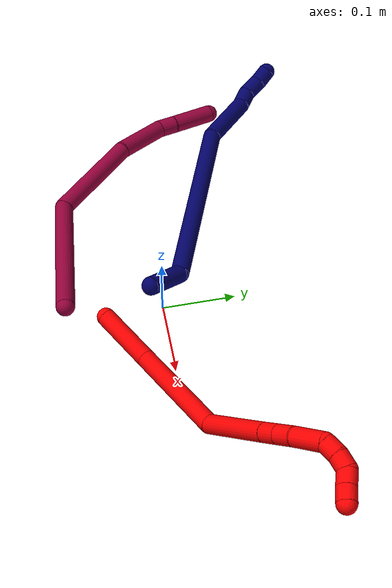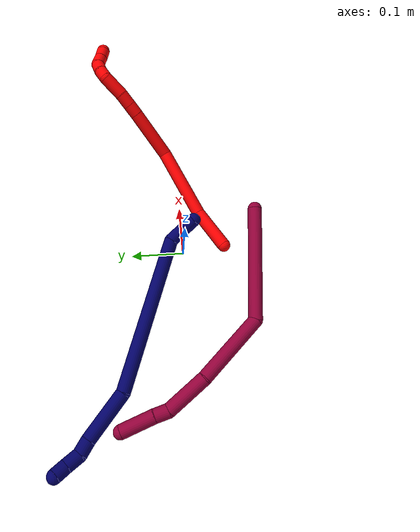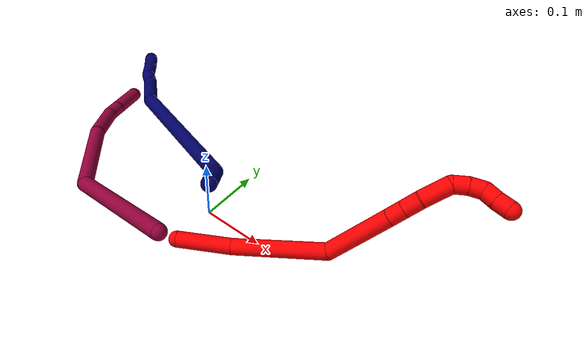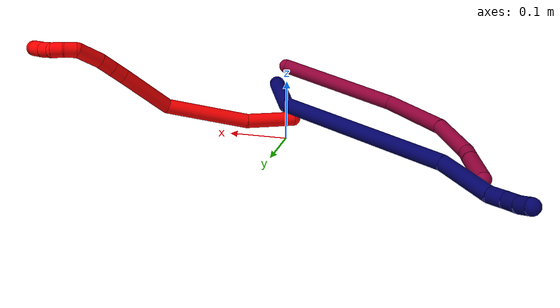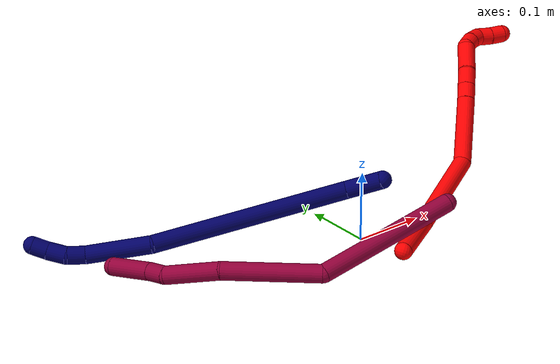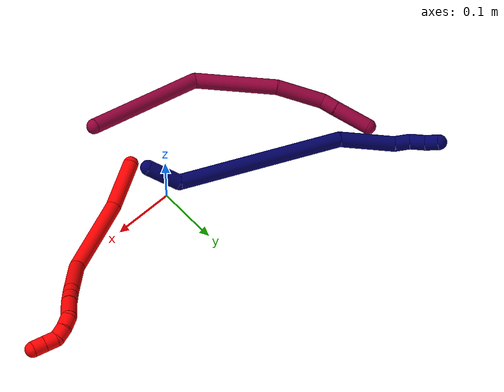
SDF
<sdf version="1.7">
 <world name="default">
  <model name="2">
   <static>0</static>
   <link name="2">
    <collision name="collision-cylinder-e_1_1_4">
     <pose>0.025647 0.022432 0.025403 -0.723371 0.647817 -0.252682</pose>
     <geometry><cylinder><radius>0.0125</radius><length>0.085001</length></cylinder></geometry>
     <surface>
      <friction><ode><mu>1.16</mu><mu2>1.16</mu2><slip1>0</slip1><slip2>0</slip2></ode></friction>
      <contact><ode><kp>1e+06</kp><kd>1</kd><max_vel>0</max_vel><min_depth>0.001</min_depth></ode></contact>
     </surface>
    </collision>
    <visual name="visual-cylinder-e_1_1_4">
     <pose>0.025647 0.022432 0.025403 -0.723371 0.647817 -0.252682</pose>
     <geometry><cylinder><radius>0.0125</radius><length>0.085001</length></cylinder></geometry>
     <material><ambient>1 0 0 1</ambient></material>
    </visual>
    <collision name="collision-cylinder-e_2_4_5">
     <pose>0.088349 0.072956 0.105535 -0.474216 0.542153 -0.134118</pose>
     <geometry><cylinder><radius>0.0125</radius><length>0.143631</length></cylinder></geometry>
     <surface>
      <friction><ode><mu>1.16</mu><mu2>1.16</mu2><slip1>0</slip1><slip2>0</slip2></ode></friction>
      <contact><ode><kp>1e+06</kp><kd>1</kd><max_vel>0</max_vel><min_depth>0.001</min_depth></ode></contact>
     </surface>
    </collision>
    <visual name="visual-cylinder-e_2_4_5">
     <pose>0.088349 0.072956 0.105535 -0.474216 0.542153 -0.134118</pose>
     <geometry><cylinder><radius>0.0125</radius><length>0.143631</length></cylinder></geometry>
     <material><ambient>1 0 0 1</ambient></material>
    </visual>
    <collision name="collision-cylinder-e_3_5_6">
     <pose>0.125526 0.119895 0.206271 -0.388817 0.002455 -0.000483</pose>
     <geometry><cylinder><radius>0.0125</radius><length>0.099436</length></cylinder></geometry>
     <surface>
      <friction><ode><mu>1.16</mu><mu2>1.16</mu2><slip1>0</slip1><slip2>0</slip2></ode></friction>
      <contact><ode><kp>1e+06</kp><kd>1</kd><max_vel>0</max_vel><min_depth>0.001</min_depth></ode></contact>
     </surface>
    </collision>
    <visual name="visual-cylinder-e_3_5_6">
     <pose>0.125526 0.119895 0.206271 -0.388817 0.002455 -0.000483</pose>
     <geometry><cylinder><radius>0.0125</radius><length>0.099436</length></cylinder></geometry>
     <material><ambient>1 0 0 1</ambient></material>
    </visual>
    <collision name="collision-cylinder-e_4_6_7">
     <pose>0.125604 0.143378 0.262735 -0.41728 -0.003862 0.000818</pose>
     <geometry><cylinder><radius>0.0125</radius><length>0.022878</length></cylinder></geometry>
     <surface>
      <friction><ode><mu>1.16</mu><mu2>1.16</mu2><slip1>0</slip1><slip2>0</slip2></ode></friction>
      <contact><ode><kp>1e+06</kp><kd>1</kd><max_vel>0</max_vel><min_depth>0.001</min_depth></ode></contact>
     </surface>
    </collision>
    <visual name="visual-cylinder-e_4_6_7">
     <pose>0.125604 0.143378 0.262735 -0.41728 -0.003862 0.000818</pose>
     <geometry><cylinder><radius>0.0125</radius><length>0.022878</length></cylinder></geometry>
     <material><ambient>1 0 0 1</ambient></material>
    </visual>
    <collision name="collision-cylinder-e_5_7_8">
     <pose>0.125503 0.153123 0.284691 -0.418093 -0.004511 0.000957</pose>
     <geometry><cylinder><radius>0.0125</radius><length>0.025166</length></cylinder></geometry>
     <surface>
      <friction><ode><mu>1.16</mu><mu2>1.16</mu2><slip1>0</slip1><slip2>0</slip2></ode></friction>
      <contact><ode><kp>1e+06</kp><kd>1</kd><max_vel>0</max_vel><min_depth>0.001</min_depth></ode></contact>
     </surface>
    </collision>
    <visual name="visual-cylinder-e_5_7_8">
     <pose>0.125503 0.153123 0.284691 -0.418093 -0.004511 0.000957</pose>
     <geometry><cylinder><radius>0.0125</radius><length>0.025166</length></cylinder></geometry>
     <material><ambient>1 0 0 1</ambient></material>
    </visual>
    <collision name="collision-cylinder-e_6_8_9">
     <pose>0.126559 0.169566 0.314464 -0.555161 0.051672 -0.014726</pose>
     <geometry><cylinder><radius>0.0125</radius><length>0.043066</length></cylinder></geometry>
     <surface>
      <friction><ode><mu>1.16</mu><mu2>1.16</mu2><slip1>0</slip1><slip2>0</slip2></ode></friction>
      <contact><ode><kp>1e+06</kp><kd>1</kd><max_vel>0</max_vel><min_depth>0.001</min_depth></ode></contact>
     </surface>
    </collision>
    <visual name="visual-cylinder-e_6_8_9">
     <pose>0.126559 0.169566 0.314464 -0.555161 0.051672 -0.014726</pose>
     <geometry><cylinder><radius>0.0125</radius><length>0.043066</length></cylinder></geometry>
     <material><ambient>1 0 0 1</ambient></material>
    </visual>
    <collision name="collision-cylinder-e_7_9_10">
     <pose>0.133729 0.186097 0.339348 -0.66632 0.624388 -0.222458</pose>
     <geometry><cylinder><radius>0.0125</radius><length>0.020726</length></cylinder></geometry>
     <surface>
      <friction><ode><mu>1.16</mu><mu2>1.16</mu2><slip1>0</slip1><slip2>0</slip2></ode></friction>
      <contact><ode><kp>1e+06</kp><kd>1</kd><max_vel>0</max_vel><min_depth>0.001</min_depth></ode></contact>
     </surface>
    </collision>
    <visual name="visual-cylinder-e_7_9_10">
     <pose>0.133729 0.186097 0.339348 -0.66632 0.624388 -0.222458</pose>
     <geometry><cylinder><radius>0.0125</radius><length>0.020726</length></cylinder></geometry>
     <material><ambient>1 0 0 1</ambient></material>
    </visual>
    <collision name="collision-cylinder-e_8_10_11">
     <pose>0.147235 0.194829 0.35163 -0.557338 0.839411 -0.253965</pose>
     <geometry><cylinder><radius>0.0125</radius><length>0.020014</length></cylinder></geometry>
     <surface>
      <friction><ode><mu>1.16</mu><mu2>1.16</mu2><slip1>0</slip1><slip2>0</slip2></ode></friction>
      <contact><ode><kp>1e+06</kp><kd>1</kd><max_vel>0</max_vel><min_depth>0.001</min_depth></ode></contact>
     </surface>
    </collision>
    <visual name="visual-cylinder-e_8_10_11">
     <pose>0.147235 0.194829 0.35163 -0.557338 0.839411 -0.253965</pose>
     <geometry><cylinder><radius>0.0125</radius><length>0.020014</length></cylinder></geometry>
     <material><ambient>1 0 0 1</ambient></material>
    </visual>
    <collision name="collision-cylinder-e_9_11_12">
     <pose>0.163576 0.196403 0.361477 0.439104 1.09231 0.269627</pose>
     <geometry><cylinder><radius>0.0125</radius><length>0.020038</length></cylinder></geometry>
     <surface>
      <friction><ode><mu>1.16</mu><mu2>1.16</mu2><slip1>0</slip1><slip2>0</slip2></ode></friction>
      <contact><ode><kp>1e+06</kp><kd>1</kd><max_vel>0</max_vel><min_depth>0.001</min_depth></ode></contact>
     </surface>
    </collision>
    <visual name="visual-cylinder-e_9_11_12">
     <pose>0.163576 0.196403 0.361477 0.439104 1.09231 0.269627</pose>
     <geometry><cylinder><radius>0.0125</radius><length>0.020038</length></cylinder></geometry>
     <material><ambient>1 0 0 1</ambient></material>
    </visual>
    <collision name="collision-cylinder-e_10_12_2">
     <pose>0.180929 0.192706 0.37074 0.328909 1.00475 0.181843</pose>
     <geometry><cylinder><radius>0.0125</radius><length>0.020046</length></cylinder></geometry>
     <surface>
      <friction><ode><mu>1.16</mu><mu2>1.16</mu2><slip1>0</slip1><slip2>0</slip2></ode></friction>
      <contact><ode><kp>1e+06</kp><kd>1</kd><max_vel>0</max_vel><min_depth>0.001</min_depth></ode></contact>
     </surface>
    </collision>
    <visual name="visual-cylinder-e_10_12_2">
     <pose>0.180929 0.192706 0.37074 0.328909 1.00475 0.181843</pose>
     <geometry><cylinder><radius>0.0125</radius><length>0.020046</length></cylinder></geometry>
     <material><ambient>1 0 0 1</ambient></material>
    </visual>
    <collision name="collision-sphere-2">
     <pose>0.189389 0.19097 0.375827 0 -0 0</pose>
     <geometry><sphere><radius>0.0125</radius></sphere></geometry>
     <surface>
      <friction><ode><mu>1.16</mu><mu2>1.16</mu2><slip1>0</slip1><slip2>0</slip2></ode></friction>
      <contact><ode><kp>1e+06</kp><kd>1</kd><max_vel>0</max_vel><min_depth>0.001</min_depth></ode></contact>
     </surface>
    </collision>
    <visual name="visual-sphere-2">
     <pose>0.189389 0.19097 0.375827 0 -0 0</pose>
     <geometry><sphere><radius>0.0125</radius></sphere></geometry>
     <material><ambient>1 0 0 1</ambient></material>
    </visual>
    <collision name="collision-sphere-12">
     <pose>0.17247 0.194442 0.365653 0 -0 0</pose>
     <geometry><sphere><radius>0.0125</radius></sphere></geometry>
     <surface>
      <friction><ode><mu>1.16</mu><mu2>1.16</mu2><slip1>0</slip1><slip2>0</slip2></ode></friction>
      <contact><ode><kp>1e+06</kp><kd>1</kd><max_vel>0</max_vel><min_depth>0.001</min_depth></ode></contact>
     </surface>
    </collision>
    <visual name="visual-sphere-12">
     <pose>0.17247 0.194442 0.365653 0 -0 0</pose>
     <geometry><sphere><radius>0.0125</radius></sphere></geometry>
     <material><ambient>1 0 0 1</ambient></material>
    </visual>
    <collision name="collision-sphere-11">
     <pose>0.154683 0.198365 0.357302 0 -0 0</pose>
     <geometry><sphere><radius>0.0125</radius></sphere></geometry>
     <surface>
      <friction><ode><mu>1.16</mu><mu2>1.16</mu2><slip1>0</slip1><slip2>0</slip2></ode></friction>
      <contact><ode><kp>1e+06</kp><kd>1</kd><max_vel>0</max_vel><min_depth>0.001</min_depth></ode></contact>
     </surface>
    </collision>
    <visual name="visual-sphere-11">
     <pose>0.154683 0.198365 0.357302 0 -0 0</pose>
     <geometry><sphere><radius>0.0125</radius></sphere></geometry>
     <material><ambient>1 0 0 1</ambient></material>
    </visual>
    <collision name="collision-sphere-10">
     <pose>0.139787 0.191294 0.345958 0 -0 0</pose>
     <geometry><sphere><radius>0.0125</radius></sphere></geometry>
     <surface>
      <friction><ode><mu>1.16</mu><mu2>1.16</mu2><slip1>0</slip1><slip2>0</slip2></ode></friction>
      <contact><ode><kp>1e+06</kp><kd>1</kd><max_vel>0</max_vel><min_depth>0.001</min_depth></ode></contact>
     </surface>
    </collision>
    <visual name="visual-sphere-10">
     <pose>0.139787 0.191294 0.345958 0 -0 0</pose>
     <geometry><sphere><radius>0.0125</radius></sphere></geometry>
     <material><ambient>1 0 0 1</ambient></material>
    </visual>
    <collision name="collision-sphere-9">
     <pose>0.127671 0.180901 0.332739 0 -0 0</pose>
     <geometry><sphere><radius>0.0125</radius></sphere></geometry>
     <surface>
      <friction><ode><mu>1.16</mu><mu2>1.16</mu2><slip1>0</slip1><slip2>0</slip2></ode></friction>
      <contact><ode><kp>1e+06</kp><kd>1</kd><max_vel>0</max_vel><min_depth>0.001</min_depth></ode></contact>
     </surface>
    </collision>
    <visual name="visual-sphere-9">
     <pose>0.127671 0.180901 0.332739 0 -0 0</pose>
     <geometry><sphere><radius>0.0125</radius></sphere></geometry>
     <material><ambient>1 0 0 1</ambient></material>
    </visual>
    <collision name="collision-sphere-4">
     <pose>0.051293 0.044865 0.050806 0 -0 0</pose>
     <geometry><sphere><radius>0.0125</radius></sphere></geometry>
     <surface>
      <friction><ode><mu>1.16</mu><mu2>1.16</mu2><slip1>0</slip1><slip2>0</slip2></ode></friction>
      <contact><ode><kp>1e+06</kp><kd>1</kd><max_vel>0</max_vel><min_depth>0.001</min_depth></ode></contact>
     </surface>
    </collision>
    <visual name="visual-sphere-4">
     <pose>0.051293 0.044865 0.050806 0 -0 0</pose>
     <geometry><sphere><radius>0.0125</radius></sphere></geometry>
     <material><ambient>1 0 0 1</ambient></material>
    </visual>
    <collision name="collision-sphere-1">
     <geometry><sphere><radius>0.0125</radius></sphere></geometry>
     <surface>
      <friction><ode><mu>1.16</mu><mu2>1.16</mu2><slip1>0</slip1><slip2>0</slip2></ode></friction>
      <contact><ode><kp>1e+06</kp><kd>1</kd><max_vel>0</max_vel><min_depth>0.001</min_depth></ode></contact>
     </surface>
    </collision>
    <visual name="visual-sphere-1">
     <geometry><sphere><radius>0.0125</radius></sphere></geometry>
     <material><ambient>1 0 0 1</ambient></material>
    </visual>
    <collision name="collision-sphere-8">
     <pose>0.125447 0.158232 0.29619 0 -0 0</pose>
     <geometry><sphere><radius>0.0125</radius></sphere></geometry>
     <surface>
      <friction><ode><mu>1.16</mu><mu2>1.16</mu2><slip1>0</slip1><slip2>0</slip2></ode></friction>
      <contact><ode><kp>1e+06</kp><kd>1</kd><max_vel>0</max_vel><min_depth>0.001</min_depth></ode></contact>
     </surface>
    </collision>
    <visual name="visual-sphere-8">
     <pose>0.125447 0.158232 0.29619 0 -0 0</pose>
     <geometry><sphere><radius>0.0125</radius></sphere></geometry>
     <material><ambient>1 0 0 1</ambient></material>
    </visual>
    <collision name="collision-sphere-5">
     <pose>0.125404 0.101047 0.160264 0 -0 0</pose>
     <geometry><sphere><radius>0.0125</radius></sphere></geometry>
     <surface>
      <friction><ode><mu>1.16</mu><mu2>1.16</mu2><slip1>0</slip1><slip2>0</slip2></ode></friction>
      <contact><ode><kp>1e+06</kp><kd>1</kd><max_vel>0</max_vel><min_depth>0.001</min_depth></ode></contact>
     </surface>
    </collision>
    <visual name="visual-sphere-5">
     <pose>0.125404 0.101047 0.160264 0 -0 0</pose>
     <geometry><sphere><radius>0.0125</radius></sphere></geometry>
     <material><ambient>1 0 0 1</ambient></material>
    </visual>
    <collision name="collision-sphere-6">
     <pose>0.125648 0.138743 0.252278 0 -0 0</pose>
     <geometry><sphere><radius>0.0125</radius></sphere></geometry>
     <surface>
      <friction><ode><mu>1.16</mu><mu2>1.16</mu2><slip1>0</slip1><slip2>0</slip2></ode></friction>
      <contact><ode><kp>1e+06</kp><kd>1</kd><max_vel>0</max_vel><min_depth>0.001</min_depth></ode></contact>
     </surface>
    </collision>
    <visual name="visual-sphere-6">
     <pose>0.125648 0.138743 0.252278 0 -0 0</pose>
     <geometry><sphere><radius>0.0125</radius></sphere></geometry>
     <material><ambient>1 0 0 1</ambient></material>
    </visual>
    <collision name="collision-sphere-7">
     <pose>0.12556 0.148014 0.273192 0 -0 0</pose>
     <geometry><sphere><radius>0.0125</radius></sphere></geometry>
     <surface>
      <friction><ode><mu>1.16</mu><mu2>1.16</mu2><slip1>0</slip1><slip2>0</slip2></ode></friction>
      <contact><ode><kp>1e+06</kp><kd>1</kd><max_vel>0</max_vel><min_depth>0.001</min_depth></ode></contact>
     </surface>
    </collision>
    <visual name="visual-sphere-7">
     <pose>0.12556 0.148014 0.273192 0 -0 0</pose>
     <geometry><sphere><radius>0.0125</radius></sphere></geometry>
     <material><ambient>1 0 0 1</ambient></material>
    </visual>
    <inertial>
     <pose>0.102913 0.108596 0.186583 0 -0 0</pose>
     <mass>0.5</mass>
     <inertia>
      <ixx>0.000333</ixx>
      <ixy>0</ixy>
      <ixz>0</ixz>
      <iyy>0.000346</iyy>
      <iyz>0</iyz>
      <izz>-0.000306</izz>
     </inertia>
    </inertial>
   </link>
   <pose>0.007417 -0.078514 0.011493 -0.335859 0.552665 -0.255516</pose>
  </model>
  <model name="7">
   <static>0</static>
   <link name="7">
    <collision name="collision-cylinder-e_1_1_4">
     <pose>-0.013973 0.020198 0.01328 -0.98918 -0.524116 0.287315</pose>
     <geometry><cylinder><radius>0.0125</radius><length>0.05584</length></cylinder></geometry>
     <surface>
      <friction><ode><mu>1.16</mu><mu2>1.16</mu2><slip1>0</slip1><slip2>0</slip2></ode></friction>
      <contact><ode><kp>1e+06</kp><kd>1</kd><max_vel>0</max_vel><min_depth>0.001</min_depth></ode></contact>
     </surface>
    </collision>
    <visual name="visual-cylinder-e_1_1_4">
     <pose>-0.013973 0.020198 0.01328 -0.98918 -0.524116 0.287315</pose>
     <geometry><cylinder><radius>0.0125</radius><length>0.05584</length></cylinder></geometry>
     <material><ambient>0.003922 0 0.403922 1</ambient></material>
    </visual>
    <collision name="collision-cylinder-e_2_4_5">
     <pose>-0.145519 0.061955 0.098446 -0.291374 -1.00268 0.160479</pose>
     <geometry><cylinder><radius>0.0125</radius><length>0.278971</length></cylinder></geometry>
     <surface>
      <friction><ode><mu>1.16</mu><mu2>1.16</mu2><slip1>0</slip1><slip2>0</slip2></ode></friction>
      <contact><ode><kp>1e+06</kp><kd>1</kd><max_vel>0</max_vel><min_depth>0.001</min_depth></ode></contact>
     </surface>
    </collision>
    <visual name="visual-cylinder-e_2_4_5">
     <pose>-0.145519 0.061955 0.098446 -0.291374 -1.00268 0.160479</pose>
     <geometry><cylinder><radius>0.0125</radius><length>0.278971</length></cylinder></geometry>
     <material><ambient>0.003922 0 0.403922 1</ambient></material>
    </visual>
    <collision name="collision-cylinder-e_3_5_6">
     <pose>-0.292606 0.103474 0.198457 -0.61719 -0.707823 0.234477</pose>
     <geometry><cylinder><radius>0.0125</radius><length>0.090783</length></cylinder></geometry>
     <surface>
      <friction><ode><mu>1.16</mu><mu2>1.16</mu2><slip1>0</slip1><slip2>0</slip2></ode></friction>
      <contact><ode><kp>1e+06</kp><kd>1</kd><max_vel>0</max_vel><min_depth>0.001</min_depth></ode></contact>
     </surface>
    </collision>
    <visual name="visual-cylinder-e_3_5_6">
     <pose>-0.292606 0.103474 0.198457 -0.61719 -0.707823 0.234477</pose>
     <geometry><cylinder><radius>0.0125</radius><length>0.090783</length></cylinder></geometry>
     <material><ambient>0.003922 0 0.403922 1</ambient></material>
    </visual>
    <collision name="collision-cylinder-e_4_6_7">
     <pose>-0.330733 0.126027 0.235649 -0.278631 -0.740177 0.108697</pose>
     <geometry><cylinder><radius>0.0125</radius><length>0.025545</length></cylinder></geometry>
     <surface>
      <friction><ode><mu>1.16</mu><mu2>1.16</mu2><slip1>0</slip1><slip2>0</slip2></ode></friction>
      <contact><ode><kp>1e+06</kp><kd>1</kd><max_vel>0</max_vel><min_depth>0.001</min_depth></ode></contact>
     </surface>
    </collision>
    <visual name="visual-cylinder-e_4_6_7">
     <pose>-0.330733 0.126027 0.235649 -0.278631 -0.740177 0.108697</pose>
     <geometry><cylinder><radius>0.0125</radius><length>0.025545</length></cylinder></geometry>
     <material><ambient>0.003922 0 0.403922 1</ambient></material>
    </visual>
    <collision name="collision-cylinder-e_5_7_8">
     <pose>-0.344202 0.133049 0.25627 -0.365944 -0.373847 0.069966</pose>
     <geometry><cylinder><radius>0.0125</radius><length>0.026585</length></cylinder></geometry>
     <surface>
      <friction><ode><mu>1.16</mu><mu2>1.16</mu2><slip1>0</slip1><slip2>0</slip2></ode></friction>
      <contact><ode><kp>1e+06</kp><kd>1</kd><max_vel>0</max_vel><min_depth>0.001</min_depth></ode></contact>
     </surface>
    </collision>
    <visual name="visual-cylinder-e_5_7_8">
     <pose>-0.344202 0.133049 0.25627 -0.365944 -0.373847 0.069966</pose>
     <geometry><cylinder><radius>0.0125</radius><length>0.026585</length></cylinder></geometry>
     <material><ambient>0.003922 0 0.403922 1</ambient></material>
    </visual>
    <collision name="collision-cylinder-e_6_8_2">
     <pose>-0.352908 0.139699 0.278037 -0.214302 -0.353188 0.038385</pose>
     <geometry><cylinder><radius>0.0125</radius><length>0.022276</length></cylinder></geometry>
     <surface>
      <friction><ode><mu>1.16</mu><mu2>1.16</mu2><slip1>0</slip1><slip2>0</slip2></ode></friction>
      <contact><ode><kp>1e+06</kp><kd>1</kd><max_vel>0</max_vel><min_depth>0.001</min_depth></ode></contact>
     </surface>
    </collision>
    <visual name="visual-cylinder-e_6_8_2">
     <pose>-0.352908 0.139699 0.278037 -0.214302 -0.353188 0.038385</pose>
     <geometry><cylinder><radius>0.0125</radius><length>0.022276</length></cylinder></geometry>
     <material><ambient>0.003922 0 0.403922 1</ambient></material>
    </visual>
    <collision name="collision-sphere-2">
     <pose>-0.356761 0.141922 0.288248 0 -0 0</pose>
     <geometry><sphere><radius>0.0125</radius></sphere></geometry>
     <surface>
      <friction><ode><mu>1.16</mu><mu2>1.16</mu2><slip1>0</slip1><slip2>0</slip2></ode></friction>
      <contact><ode><kp>1e+06</kp><kd>1</kd><max_vel>0</max_vel><min_depth>0.001</min_depth></ode></contact>
     </surface>
    </collision>
    <visual name="visual-sphere-2">
     <pose>-0.356761 0.141922 0.288248 0 -0 0</pose>
     <geometry><sphere><radius>0.0125</radius></sphere></geometry>
     <material><ambient>0.003922 0 0.403922 1</ambient></material>
    </visual>
    <collision name="collision-sphere-4">
     <pose>-0.027945 0.040395 0.026559 0 -0 0</pose>
     <geometry><sphere><radius>0.0125</radius></sphere></geometry>
     <surface>
      <friction><ode><mu>1.16</mu><mu2>1.16</mu2><slip1>0</slip1><slip2>0</slip2></ode></friction>
      <contact><ode><kp>1e+06</kp><kd>1</kd><max_vel>0</max_vel><min_depth>0.001</min_depth></ode></contact>
     </surface>
    </collision>
    <visual name="visual-sphere-4">
     <pose>-0.027945 0.040395 0.026559 0 -0 0</pose>
     <geometry><sphere><radius>0.0125</radius></sphere></geometry>
     <material><ambient>0.003922 0 0.403922 1</ambient></material>
    </visual>
    <collision name="collision-sphere-1">
     <geometry><sphere><radius>0.0125</radius></sphere></geometry>
     <surface>
      <friction><ode><mu>1.16</mu><mu2>1.16</mu2><slip1>0</slip1><slip2>0</slip2></ode></friction>
      <contact><ode><kp>1e+06</kp><kd>1</kd><max_vel>0</max_vel><min_depth>0.001</min_depth></ode></contact>
     </surface>
    </collision>
    <visual name="visual-sphere-1">
     <geometry><sphere><radius>0.0125</radius></sphere></geometry>
     <material><ambient>0.003922 0 0.403922 1</ambient></material>
    </visual>
    <collision name="collision-sphere-8">
     <pose>-0.349056 0.137477 0.267825 0 -0 0</pose>
     <geometry><sphere><radius>0.0125</radius></sphere></geometry>
     <surface>
      <friction><ode><mu>1.16</mu><mu2>1.16</mu2><slip1>0</slip1><slip2>0</slip2></ode></friction>
      <contact><ode><kp>1e+06</kp><kd>1</kd><max_vel>0</max_vel><min_depth>0.001</min_depth></ode></contact>
     </surface>
    </collision>
    <visual name="visual-sphere-8">
     <pose>-0.349056 0.137477 0.267825 0 -0 0</pose>
     <geometry><sphere><radius>0.0125</radius></sphere></geometry>
     <material><ambient>0.003922 0 0.403922 1</ambient></material>
    </visual>
    <collision name="collision-sphere-5">
     <pose>-0.263094 0.083514 0.170332 0 -0 0</pose>
     <geometry><sphere><radius>0.0125</radius></sphere></geometry>
     <surface>
      <friction><ode><mu>1.16</mu><mu2>1.16</mu2><slip1>0</slip1><slip2>0</slip2></ode></friction>
      <contact><ode><kp>1e+06</kp><kd>1</kd><max_vel>0</max_vel><min_depth>0.001</min_depth></ode></contact>
     </surface>
    </collision>
    <visual name="visual-sphere-5">
     <pose>-0.263094 0.083514 0.170332 0 -0 0</pose>
     <geometry><sphere><radius>0.0125</radius></sphere></geometry>
     <material><ambient>0.003922 0 0.403922 1</ambient></material>
    </visual>
    <collision name="collision-sphere-6">
     <pose>-0.322119 0.123433 0.226582 0 -0 0</pose>
     <geometry><sphere><radius>0.0125</radius></sphere></geometry>
     <surface>
      <friction><ode><mu>1.16</mu><mu2>1.16</mu2><slip1>0</slip1><slip2>0</slip2></ode></friction>
      <contact><ode><kp>1e+06</kp><kd>1</kd><max_vel>0</max_vel><min_depth>0.001</min_depth></ode></contact>
     </surface>
    </collision>
    <visual name="visual-sphere-6">
     <pose>-0.322119 0.123433 0.226582 0 -0 0</pose>
     <geometry><sphere><radius>0.0125</radius></sphere></geometry>
     <material><ambient>0.003922 0 0.403922 1</ambient></material>
    </visual>
    <collision name="collision-sphere-7">
     <pose>-0.339347 0.128621 0.244715 0 -0 0</pose>
     <geometry><sphere><radius>0.0125</radius></sphere></geometry>
     <surface>
      <friction><ode><mu>1.16</mu><mu2>1.16</mu2><slip1>0</slip1><slip2>0</slip2></ode></friction>
      <contact><ode><kp>1e+06</kp><kd>1</kd><max_vel>0</max_vel><min_depth>0.001</min_depth></ode></contact>
     </surface>
    </collision>
    <visual name="visual-sphere-7">
     <pose>-0.339347 0.128621 0.244715 0 -0 0</pose>
     <geometry><sphere><radius>0.0125</radius></sphere></geometry>
     <material><ambient>0.003922 0 0.403922 1</ambient></material>
    </visual>
    <inertial>
     <pose>-0.1868 0.075347 0.130495 0 -0 0</pose>
     <mass>0.5</mass>
     <inertia><ixx>0.00118</ixx><ixy>0</ixy><ixz>0</ixz><iyy>0.00205</iyy><iyz>0</iyz><izz>0.001287</izz></inertia>
    </inertial>
   </link>
   <pose>0.021514 -0.017803 0.090519 -0.850597 -0.418127 0.158954</pose>
  </model>
  <model name="8">
   <static>0</static>
   <link name="8">
    <collision name="collision-cylinder-e_1_1_4">
     <pose>-0.000263 0.000991 0.101253 -0.009784 -0.0026 1.3e-05</pose>
     <geometry><cylinder><radius>0.0125</radius><length>0.202517</length></cylinder></geometry>
     <surface>
      <friction><ode><mu>1.16</mu><mu2>1.16</mu2><slip1>0</slip1><slip2>0</slip2></ode></friction>
      <contact><ode><kp>1e+06</kp><kd>1</kd><max_vel>0</max_vel><min_depth>0.001</min_depth></ode></contact>
     </surface>
    </collision>
    <visual name="visual-cylinder-e_1_1_4">
     <pose>-0.000263 0.000991 0.101253 -0.009784 -0.0026 1.3e-05</pose>
     <geometry><cylinder><radius>0.0125</radius><length>0.202517</length></cylinder></geometry>
     <material><ambient>0.584314 0 0.227451 1</ambient></material>
    </visual>
    <collision name="collision-cylinder-e_2_4_5">
     <pose>-0.042693 0.017859 0.252261 -0.308898 -0.679221 0.109898</pose>
     <geometry><cylinder><radius>0.0125</radius><length>0.134246</length></cylinder></geometry>
     <surface>
      <friction><ode><mu>1.16</mu><mu2>1.16</mu2><slip1>0</slip1><slip2>0</slip2></ode></friction>
      <contact><ode><kp>1e+06</kp><kd>1</kd><max_vel>0</max_vel><min_depth>0.001</min_depth></ode></contact>
     </surface>
    </collision>
    <visual name="visual-cylinder-e_2_4_5">
     <pose>-0.042693 0.017859 0.252261 -0.308898 -0.679221 0.109898</pose>
     <geometry><cylinder><radius>0.0125</radius><length>0.134246</length></cylinder></geometry>
     <material><ambient>0.584314 0 0.227451 1</ambient></material>
    </visual>
    <collision name="collision-cylinder-e_3_5_6">
     <pose>-0.1134 0.035363 0.328445 -0.061494 -0.822831 0.026838</pose>
     <geometry><cylinder><radius>0.0125</radius><length>0.077867</length></cylinder></geometry>
     <surface>
      <friction><ode><mu>1.16</mu><mu2>1.16</mu2><slip1>0</slip1><slip2>0</slip2></ode></friction>
      <contact><ode><kp>1e+06</kp><kd>1</kd><max_vel>0</max_vel><min_depth>0.001</min_depth></ode></contact>
     </surface>
    </collision>
    <visual name="visual-cylinder-e_3_5_6">
     <pose>-0.1134 0.035363 0.328445 -0.061494 -0.822831 0.026838</pose>
     <geometry><cylinder><radius>0.0125</radius><length>0.077867</length></cylinder></geometry>
     <material><ambient>0.584314 0 0.227451 1</ambient></material>
    </visual>
    <collision name="collision-cylinder-e_4_6_7">
     <pose>-0.153389 0.038558 0.359491 -0.327445 -1.1683 0.217572</pose>
     <geometry><cylinder><radius>0.0125</radius><length>0.024885</length></cylinder></geometry>
     <surface>
      <friction><ode><mu>1.16</mu><mu2>1.16</mu2><slip1>0</slip1><slip2>0</slip2></ode></friction>
      <contact><ode><kp>1e+06</kp><kd>1</kd><max_vel>0</max_vel><min_depth>0.001</min_depth></ode></contact>
     </surface>
    </collision>
    <visual name="visual-cylinder-e_4_6_7">
     <pose>-0.153389 0.038558 0.359491 -0.327445 -1.1683 0.217572</pose>
     <geometry><cylinder><radius>0.0125</radius><length>0.024885</length></cylinder></geometry>
     <material><ambient>0.584314 0 0.227451 1</ambient></material>
    </visual>
    <collision name="collision-cylinder-e_5_7_2">
     <pose>-0.191903 0.04239 0.377407 -0.168636 -1.10834 0.104514</pose>
     <geometry><cylinder><radius>0.0125</radius><length>0.060484</length></cylinder></geometry>
     <surface>
      <friction><ode><mu>1.16</mu><mu2>1.16</mu2><slip1>0</slip1><slip2>0</slip2></ode></friction>
      <contact><ode><kp>1e+06</kp><kd>1</kd><max_vel>0</max_vel><min_depth>0.001</min_depth></ode></contact>
     </surface>
    </collision>
    <visual name="visual-cylinder-e_5_7_2">
     <pose>-0.191903 0.04239 0.377407 -0.168636 -1.10834 0.104514</pose>
     <geometry><cylinder><radius>0.0125</radius><length>0.060484</length></cylinder></geometry>
     <material><ambient>0.584314 0 0.227451 1</ambient></material>
    </visual>
    <collision name="collision-sphere-2">
     <pose>-0.218969 0.044655 0.390708 0 -0 0</pose>
     <geometry><sphere><radius>0.0125</radius></sphere></geometry>
     <surface>
      <friction><ode><mu>1.16</mu><mu2>1.16</mu2><slip1>0</slip1><slip2>0</slip2></ode></friction>
      <contact><ode><kp>1e+06</kp><kd>1</kd><max_vel>0</max_vel><min_depth>0.001</min_depth></ode></contact>
     </surface>
    </collision>
    <visual name="visual-sphere-2">
     <pose>-0.218969 0.044655 0.390708 0 -0 0</pose>
     <geometry><sphere><radius>0.0125</radius></sphere></geometry>
     <material><ambient>0.584314 0 0.227451 1</ambient></material>
    </visual>
    <collision name="collision-sphere-7">
     <pose>-0.164838 0.040126 0.364106 0 -0 0</pose>
     <geometry><sphere><radius>0.0125</radius></sphere></geometry>
     <surface>
      <friction><ode><mu>1.16</mu><mu2>1.16</mu2><slip1>0</slip1><slip2>0</slip2></ode></friction>
      <contact><ode><kp>1e+06</kp><kd>1</kd><max_vel>0</max_vel><min_depth>0.001</min_depth></ode></contact>
     </surface>
    </collision>
    <visual name="visual-sphere-7">
     <pose>-0.164838 0.040126 0.364106 0 -0 0</pose>
     <geometry><sphere><radius>0.0125</radius></sphere></geometry>
     <material><ambient>0.584314 0 0.227451 1</ambient></material>
    </visual>
    <collision name="collision-sphere-6">
     <pose>-0.141941 0.036991 0.354876 0 -0 0</pose>
     <geometry><sphere><radius>0.0125</radius></sphere></geometry>
     <surface>
      <friction><ode><mu>1.16</mu><mu2>1.16</mu2><slip1>0</slip1><slip2>0</slip2></ode></friction>
      <contact><ode><kp>1e+06</kp><kd>1</kd><max_vel>0</max_vel><min_depth>0.001</min_depth></ode></contact>
     </surface>
    </collision>
    <visual name="visual-sphere-6">
     <pose>-0.141941 0.036991 0.354876 0 -0 0</pose>
     <geometry><sphere><radius>0.0125</radius></sphere></geometry>
     <material><ambient>0.584314 0 0.227451 1</ambient></material>
    </visual>
    <collision name="collision-sphere-5">
     <pose>-0.084858 0.033736 0.302015 0 -0 0</pose>
     <geometry><sphere><radius>0.0125</radius></sphere></geometry>
     <surface>
      <friction><ode><mu>1.16</mu><mu2>1.16</mu2><slip1>0</slip1><slip2>0</slip2></ode></friction>
      <contact><ode><kp>1e+06</kp><kd>1</kd><max_vel>0</max_vel><min_depth>0.001</min_depth></ode></contact>
     </surface>
    </collision>
    <visual name="visual-sphere-5">
     <pose>-0.084858 0.033736 0.302015 0 -0 0</pose>
     <geometry><sphere><radius>0.0125</radius></sphere></geometry>
     <material><ambient>0.584314 0 0.227451 1</ambient></material>
    </visual>
    <collision name="collision-sphere-1">
     <geometry><sphere><radius>0.0125</radius></sphere></geometry>
     <surface>
      <friction><ode><mu>1.16</mu><mu2>1.16</mu2><slip1>0</slip1><slip2>0</slip2></ode></friction>
      <contact><ode><kp>1e+06</kp><kd>1</kd><max_vel>0</max_vel><min_depth>0.001</min_depth></ode></contact>
     </surface>
    </collision>
    <visual name="visual-sphere-1">
     <geometry><sphere><radius>0.0125</radius></sphere></geometry>
     <material><ambient>0.584314 0 0.227451 1</ambient></material>
    </visual>
    <collision name="collision-sphere-4">
     <pose>-0.000527 0.001981 0.202506 0 -0 0</pose>
     <geometry><sphere><radius>0.0125</radius></sphere></geometry>
     <surface>
      <friction><ode><mu>1.16</mu><mu2>1.16</mu2><slip1>0</slip1><slip2>0</slip2></ode></friction>
      <contact><ode><kp>1e+06</kp><kd>1</kd><max_vel>0</max_vel><min_depth>0.001</min_depth></ode></contact>
     </surface>
    </collision>
    <visual name="visual-sphere-4">
     <pose>-0.000527 0.001981 0.202506 0 -0 0</pose>
     <geometry><sphere><radius>0.0125</radius></sphere></geometry>
     <material><ambient>0.584314 0 0.227451 1</ambient></material>
    </visual>
    <inertial>
     <pose>-0.060078 0.01775 0.223438 0 -0 0</pose>
     <mass>0.5</mass>
     <inertia>
      <ixx>0.000901</ixx>
      <ixy>0</ixy>
      <ixz>0</ixz>
      <iyy>0.000989</iyy>
      <iyz>0</iyz>
      <izz>0.000155</izz>
     </inertia>
    </inertial>
   </link>
   <pose>0.035272 -0.130778 0.095045 1.82474 -0.12911 -1.70275</pose>
  </model>
 </world>
</sdf>
